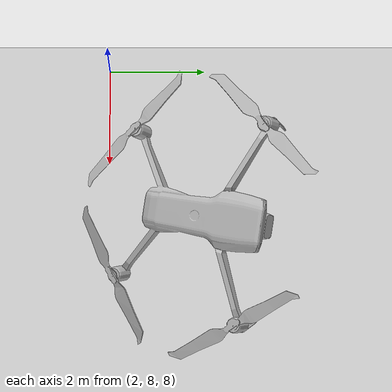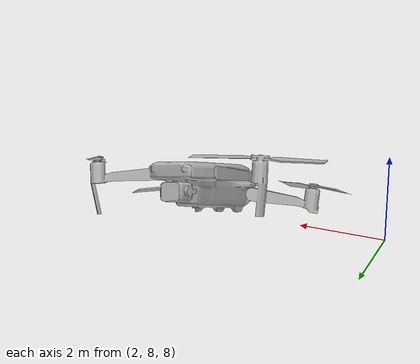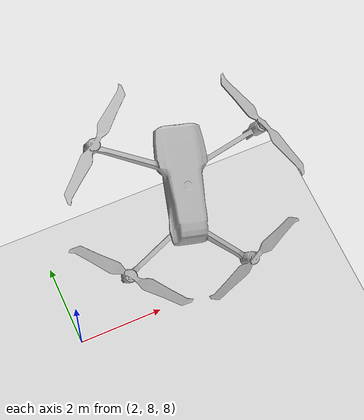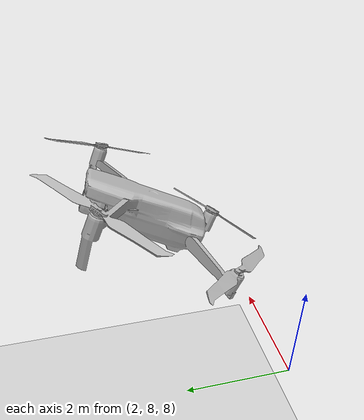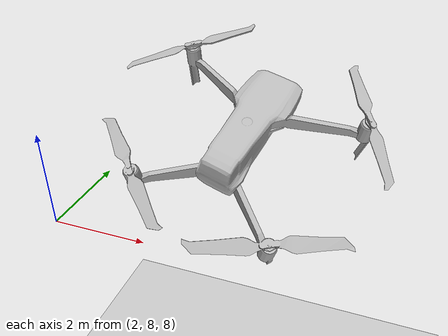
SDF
<?xml version="1.0" ?>
<sdf version="1.6">
    <world name ="dji_mavic_pro2">
      <physics name="1ms" type="ignored">
      <max_step_size>0.001</max_step_size>
      <real_time_factor>1.0</real_time_factor>
      </physics>

      <plugin
          filename="libignition-gazebo-physics-system.so"
          name="ignition::gazebo::systems::Physics">
      </plugin>
      <plugin
          filename="libignition-gazebo-user-commands-system.so"
          name="ignition::gazebo::systems::UserCommands">
      </plugin>
      <plugin
          filename="libignition-gazebo-scene-broadcaster-system.so"
          name="ignition::gazebo::systems::SceneBroadcaster">
      </plugin>

      <light type="directional" name="sun">
        <cast_shadows>true</cast_shadows>
        <pose>0 0 10 0 0 0</pose>
        <diffuse>0.8 0.8 0.8 1</diffuse>
        <specular>0.2 0.2 0.2 1</specular>
        <attenuation>
          <range>1000</range>
          <constant>0.9</constant>
          <linear>0.01</linear>
          <quadratic>0.001</quadratic>
        </attenuation>
        <direction>-0.5 0.1 -0.9</direction>
      </light>

      <model name="ground_plane">
        <static>true</static>
        <link name="link">
          <collision name="collision">
            <geometry>
              <plane>
                <normal>0 0 1</normal>
              </plane>
            </geometry>
          </collision>
          <visual name="visual">
            <geometry>
              <plane>
                <normal>0 0 1</normal>
                <size>100 100</size>
              </plane>
            </geometry>
            <material>
              <ambient>0.8 0.8 0.8 1</ambient>
              <diffuse>0.8 0.8 0.8 1</diffuse>
              <specular>0.8 0.8 0.8 1</specular>
            </material>
          </visual>
        </link>
      </model>

      <model name="dji_mavic_pro2">
        <pose>7.50 7.50 7.05 0.5 2.0 3.0 0</pose>
        <static>true</static>
        <link name="link">
          <visual name="visual">
            <geometry>
              <mesh>
                <uri>meshes/dji_mavic_pro2.obj</uri>
              </mesh>
            </geometry>
          </visual>
          <collision name="collision">
            <geometry>
              <mesh>
                <uri>meshes/dji_mavic_pro2.obj</uri>
              </mesh>
            </geometry>
          </collision>
        </link>
      </model>
    </world>
</sdf>
